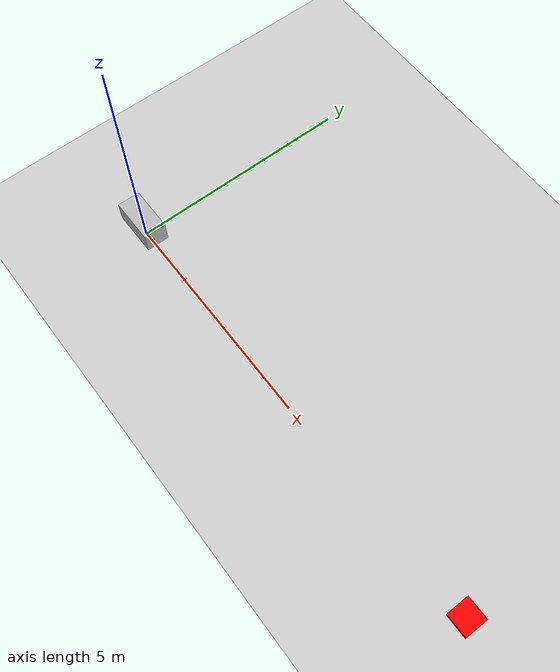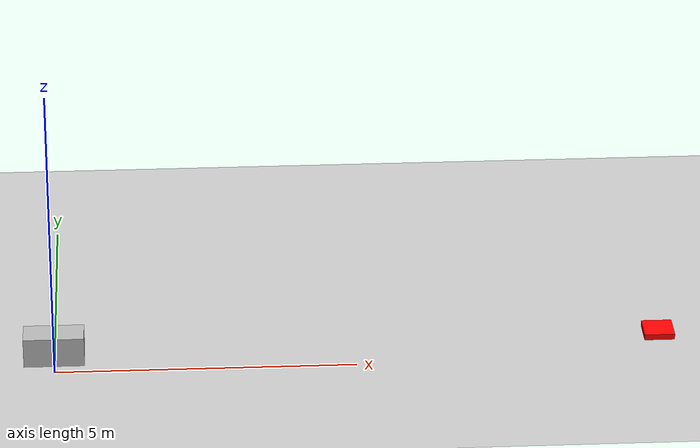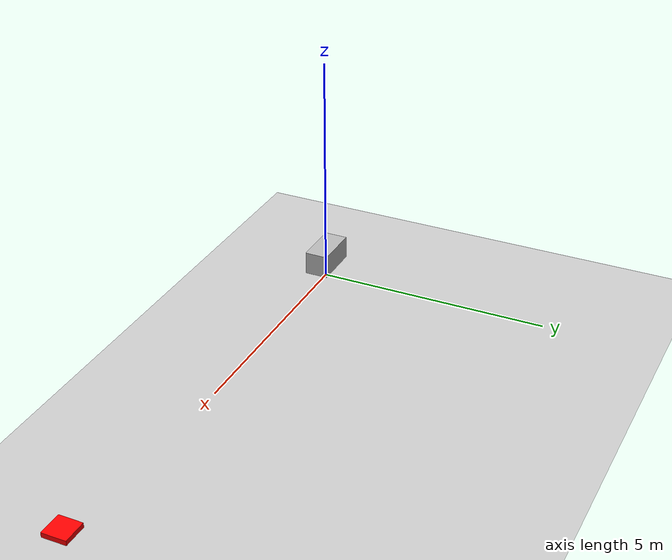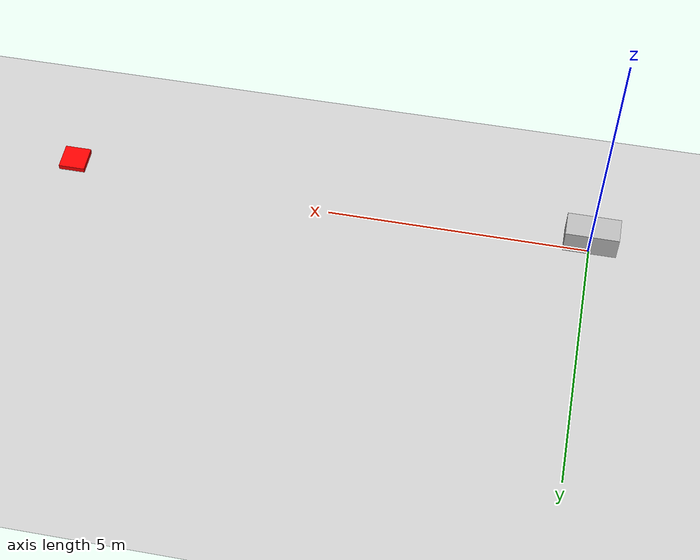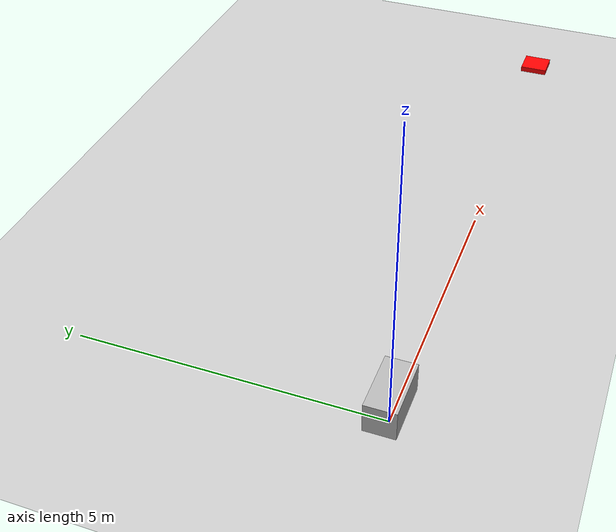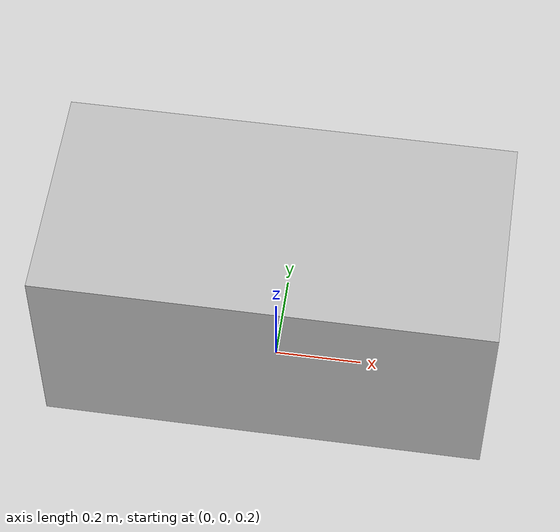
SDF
<?xml version="1.0" ?>
<sdf version="1.7">
    <world name="simple_world">
        <spherical_coordinates>
            <surface_model>EARTH_WGS84</surface_model>
            <latitude_deg>37.7749</latitude_deg>
            <longitude_deg>-122.4194</longitude_deg>
            <elevation>0.0</elevation>
            <heading_deg>0.0</heading_deg>
        </spherical_coordinates>
        <physics name="default_physics" type="dart">
            <max_step_size>0.01</max_step_size>
            <real_time_factor>1.0</real_time_factor>
        </physics>
        <light type="directional" name="sun">
            <cast_shadows>true</cast_shadows>
            <pose>0 0 10 0 0 0</pose>
            <diffuse>0.8 0.8 0.8 1</diffuse>
            <specular>0.2 0.2 0.2 1</specular>
            <direction>0.5 -0.5 -1</direction>
        </light>
        <model name="ground_plane">
            <static>true</static>
            <link name="link">
                <collision name="collision">
                    <geometry>
                        <plane><normal>0 0 1</normal><size>100 100</size></plane>
                    </geometry>
                    <surface>
                        <friction>
                            <ode>
                                <mu>0.6</mu>
                                <mu2>0.6</mu2>
                            </ode>
                        </friction>
                    </surface>
                </collision>
                <visual name="visual">
                    <geometry>
                        <plane><normal>0 0 1</normal><size>100 100</size></plane>
                    </geometry>
                    <material>
                        <ambient>0.8 0.8 0.8 1</ambient>
                        <diffuse>0.8 0.8 0.8 1</diffuse>
                    </material>
                </visual>
            </link>
        </model>
        <model name="vehicle">
            <pose>0.0001 0.0001 0.5 0 0 0</pose>
            <static>false</static>
            <link name="chassis">
                <inertial>
                    <mass>1.0</mass>
                    <inertia>
                        <ixx>0.1</ixx><ixy>0</ixy><ixz>0</ixz>
                        <iyy>0.1</iyy><iyz>0</iyz>
                        <izz>0.1</izz>
                    </inertia>
                </inertial>
                <collision name="collision">
                    <geometry>
                        <box><size>1 0.5 0.5</size></box>
                    </geometry>
                    <surface>
                        <friction>
                            <ode>
                                <mu>0.6</mu>
                                <mu2>0.6</mu2>
                            </ode>
                        </friction>
                    </surface>
                </collision>
                <visual name="visual">
                    <geometry>
                        <box><size>1 0.5 0.5</size></box>
                    </geometry>
                </visual>
                <sensor name="camera" type="camera">
                    <pose>0 0 0.25 0 0 0</pose>
                    <camera>
                        <horizontal_fov>1.57</horizontal_fov>
                        <image>
                            <width>320</width>
                            <height>240</height>
                        </image>
                        <clip>
                            <near>0.1</near>
                            <far>100</far>
                        </clip>
                    </camera>
                    <plugin name="gz::sim::systems::Sensors" filename="libgz-sim6-sensors-system.so"/>
                    <always_on>true</always_on>
                    <update_rate>30</update_rate>
                    <topic>/camera/image_raw</topic>
                </sensor>
                <sensor name="imu" type="imu">
                    <plugin name="gz::sim::systems::Imu" filename="libgz-sim6-imu-system.so"/>
                    <always_on>true</always_on>
                    <update_rate>100</update_rate>
                    <topic>/imu/data</topic>
                </sensor>
                <sensor name="navsat" type="navsat">
                    <pose>0 0 0 0 0 0</pose>
                    <topic>/gps/fix</topic>
                    <always_on>true</always_on>
                    <update_rate>1.0</update_rate>
                    <plugin name="ignition::gazebo::systems::NavSat" filename="libignition-gazebo6-navsat-system.so">
                        <noise type="gaussian">
                            <mean>0.0</mean>
                            <stddev>0.01</stddev>
                        </noise>
                    </plugin>
                </sensor>
            </link>
            <plugin name="gz::sim::systems::VelocityControl" filename="libignition-gazebo6-velocity-control-system.so">
                <topic>/model/vehicle/cmd_vel</topic>
                <initial_linear>1.0 0.0 0.0</initial_linear>
                <initial_angular>0.0 0.0 0.0</initial_angular>
            </plugin>
        </model>
        <model name="stop_sign">
            <pose>10 0 0.5 0 0 0</pose>
            <static>true</static>
            <link name="sign">
                <inertial>
                    <mass>0.5</mass>
                    <inertia>
                        <ixx>0.01</ixx><ixy>0</ixy><ixz>0</ixz>
                        <iyy>0.01</iyy><iyz>0</iyz>
                        <izz>0.01</izz>
                    </inertia>
                </inertial>
                <collision name="sign_collision">
                    <geometry>
                        <box><size>0.5 0.5 0.1</size></box>
                    </geometry>
                </collision>
                <visual name="sign_visual">
                    <geometry>
                        <box><size>0.5 0.5 0.1</size></box>
                    </geometry>
                    <material>
                        <diffuse>1 0 0 1</diffuse>
                    </material>
                </visual>
            </link>
        </model>
    </world>
</sdf>
